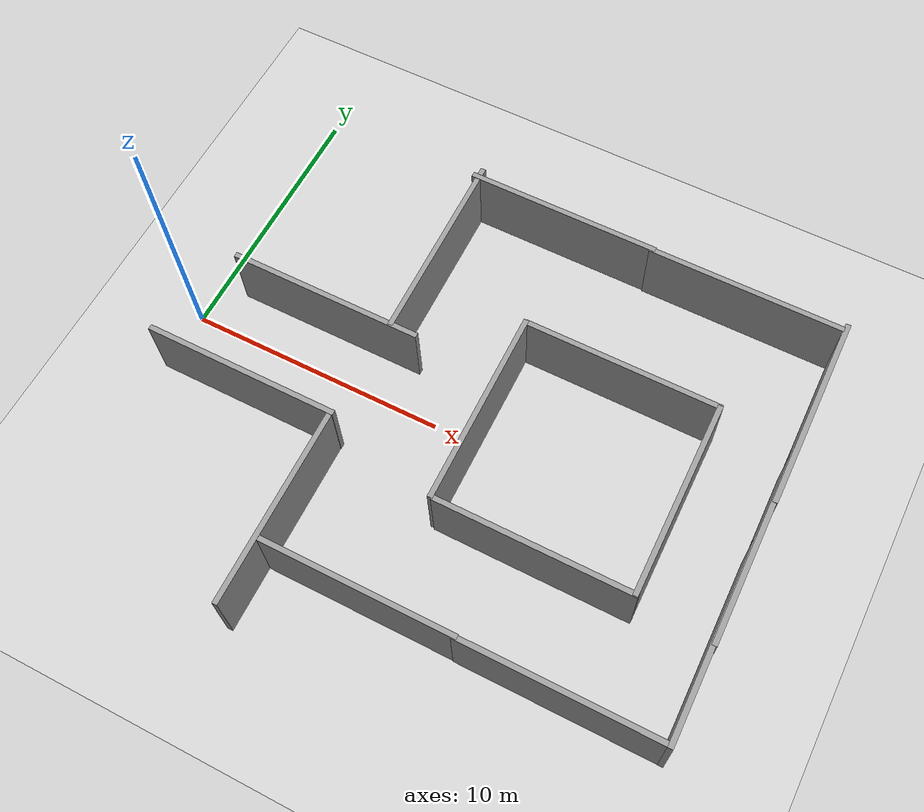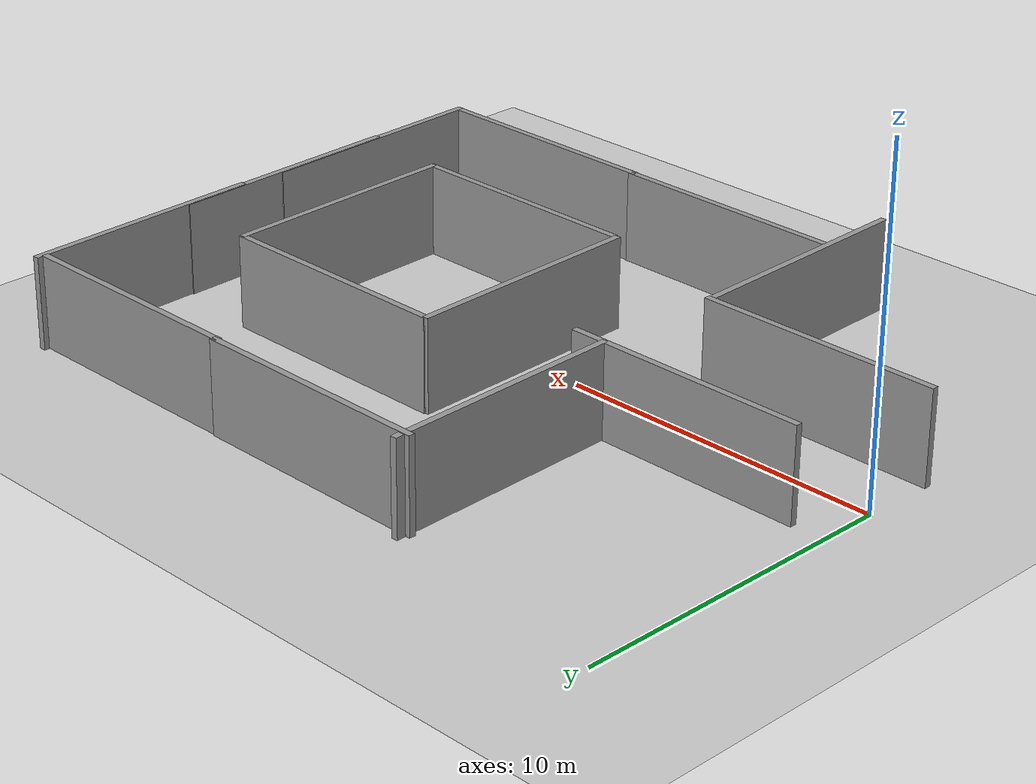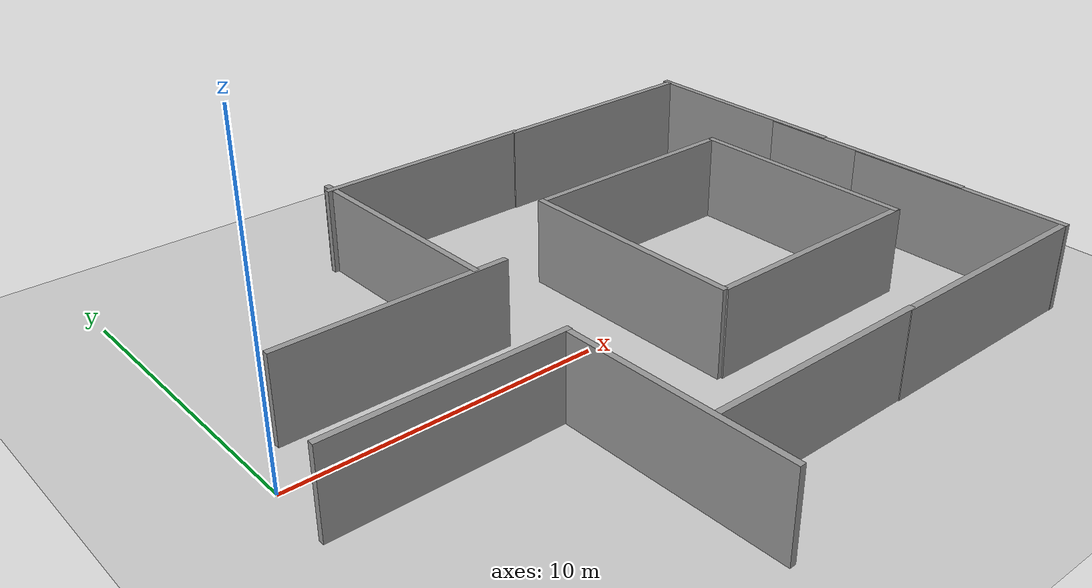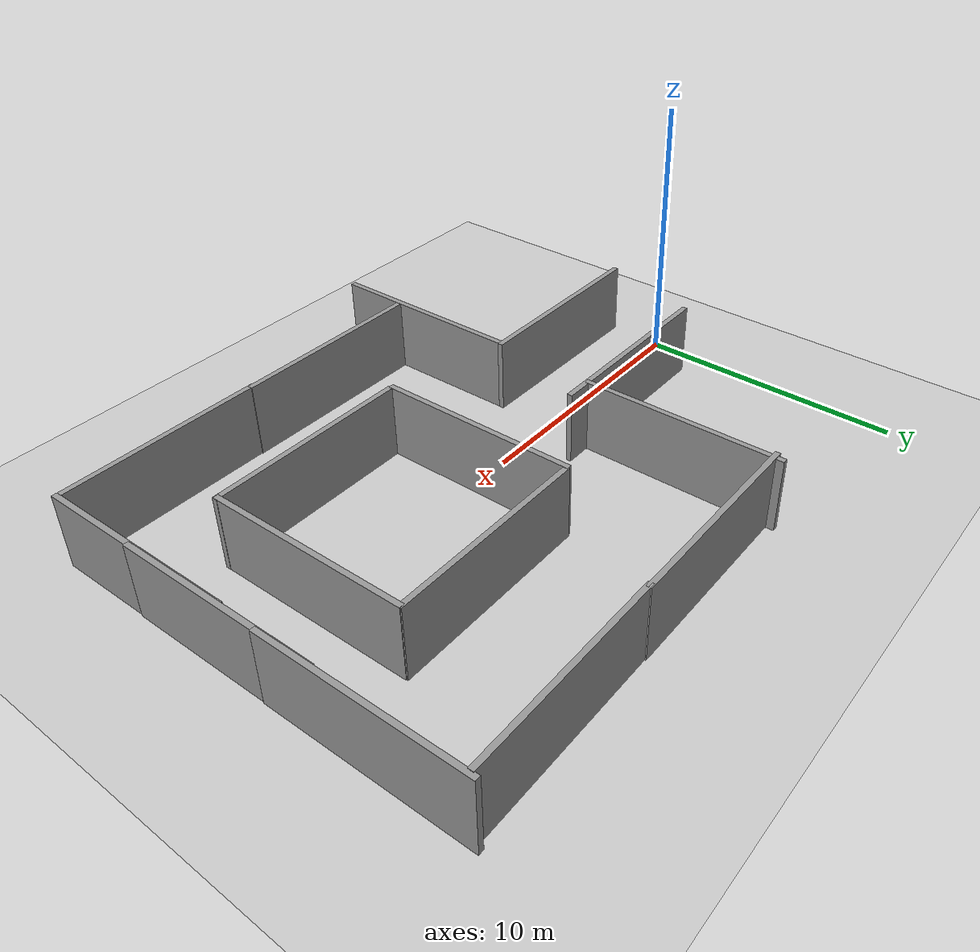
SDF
<sdf version="1.6">
 <world name="default">
  <light name="sun" type="directional">
   <pose>0 0 10 0 -0 0</pose>
   <diffuse>0.8 0.8 0.8 1</diffuse>
   <specular>0.2 0.2 0.2 1</specular>
   <attenuation>
    <range>1000</range>
    <constant>0.9</constant>
    <linear>0.01</linear>
    <quadratic>0.001</quadratic>
   </attenuation>
   <direction>-0.5 0.1 -0.9</direction>
  </light>
  <model name="ground_plane">
   <static>1</static>
   <link name="link">
    <collision name="collision">
     <geometry><plane><normal>0 0 1</normal><size>100 100</size></plane></geometry>
     <surface><friction><ode><mu>100</mu><mu2>50</mu2></ode></friction></surface>
    </collision>
    <visual name="visual">
     <cast_shadows>0</cast_shadows>
     <geometry><plane><normal>0 0 1</normal><size>100 100</size></plane></geometry>
     <material>
      <script><uri>file://media/materials/scripts/gazebo.material</uri><name>Gazebo/Grey</name></script>
     </material>
    </visual>
    <velocity_decay><linear>0</linear><angular>0</angular></velocity_decay>
   </link>
  </model>
  <physics name="default_physics" default="0" type="ode">
   <max_step_size>0.001</max_step_size>
   <real_time_factor>1</real_time_factor>
   <real_time_update_rate>1000</real_time_update_rate>
  </physics>
  <scene><ambient>0.4 0.4 0.4 1</ambient><background>0.7 0.7 0.7 1</background><shadows>1</shadows></scene>
  <model name="grey_wall">
   <static>1</static>
   <link name="link">
    <pose>0 0 1.4 0 -0 0</pose>
    <collision name="collision"><geometry><box><size>7.5 0.2 2.8</size></box></geometry></collision>
    <visual name="visual">
     <cast_shadows>0</cast_shadows>
     <geometry><box><size>7.5 0.2 2.8</size></box></geometry>
     <material>
      <script>
       <uri>model://grey_wall/materials/scripts</uri>
       <uri>model://grey_wall/materials/textures</uri>
       <name>vrc/grey_wall</name>
      </script>
     </material>
    </visual>
    <velocity_decay><linear>0</linear><angular>0</angular></velocity_decay>
   </link>
   <pose>10.7949 8.81333 0 0 -0 0</pose>
  </model>
  <gravity>0 0 -9.8</gravity>
  <magnetic_field>6e-06 2.3e-05 -4.2e-05</magnetic_field>
  <atmosphere type="adiabatic"/>
  <spherical_coordinates>
   <surface_model>EARTH_WGS84</surface_model>
   <latitude_deg>0</latitude_deg>
   <longitude_deg>0</longitude_deg>
   <elevation>0</elevation>
   <heading_deg>0</heading_deg>
  </spherical_coordinates>
  <model name="grey_wall_clone_0">
   <static>1</static>
   <link name="link">
    <pose>0 0 1.4 0 -0 0</pose>
    <collision name="collision"><geometry><box><size>7.5 0.2 2.8</size></box></geometry></collision>
    <visual name="visual">
     <cast_shadows>0</cast_shadows>
     <geometry><box><size>7.5 0.2 2.8</size></box></geometry>
     <material>
      <script>
       <uri>model://grey_wall/materials/scripts</uri>
       <uri>model://grey_wall/materials/textures</uri>
       <name>vrc/grey_wall</name>
      </script>
     </material>
    </visual>
    <velocity_decay><linear>0</linear><angular>0</angular></velocity_decay>
   </link>
   <pose>3.64552 -2.19317 0 0 -0 0</pose>
  </model>
  <model name="grey_wall_clone_clone_0">
   <static>1</static>
   <link name="link">
    <pose>0 0 1.4 0 -0 0</pose>
    <collision name="collision"><geometry><box><size>7.5 0.2 2.8</size></box></geometry></collision>
    <visual name="visual">
     <cast_shadows>0</cast_shadows>
     <geometry><box><size>7.5 0.2 2.8</size></box></geometry>
     <material>
      <script>
       <uri>model://grey_wall/materials/scripts</uri>
       <uri>model://grey_wall/materials/textures</uri>
       <name>vrc/grey_wall</name>
      </script>
     </material>
    </visual>
    <velocity_decay><linear>0</linear><angular>0</angular></velocity_decay>
   </link>
   <pose>7.34363 -5.99492 0.003813 -3.8e-05 -0.002072 -1.55267</pose>
  </model>
  <model name="grey_wall_clone_0_clone">
   <static>1</static>
   <link name="link">
    <pose>0 0 1.4 0 -0 0</pose>
    <collision name="collision"><geometry><box><size>7.5 0.2 2.8</size></box></geometry></collision>
    <visual name="visual">
     <cast_shadows>0</cast_shadows>
     <geometry><box><size>7.5 0.2 2.8</size></box></geometry>
     <material>
      <script>
       <uri>model://grey_wall/materials/scripts</uri>
       <uri>model://grey_wall/materials/textures</uri>
       <name>vrc/grey_wall</name>
      </script>
     </material>
    </visual>
    <velocity_decay><linear>0</linear><angular>0</angular></velocity_decay>
   </link>
   <pose>11.0486 -7.19499 0 0 -0 0</pose>
  </model>
  <model name="grey_wall_clone_clone_0_clone">
   <static>1</static>
   <link name="link">
    <pose>0 0 1.4 0 -0 0</pose>
    <collision name="collision"><geometry><box><size>7.5 0.2 2.8</size></box></geometry></collision>
    <visual name="visual">
     <cast_shadows>0</cast_shadows>
     <geometry><box><size>7.5 0.2 2.8</size></box></geometry>
     <material>
      <script>
       <uri>model://grey_wall/materials/scripts</uri>
       <uri>model://grey_wall/materials/textures</uri>
       <name>vrc/grey_wall</name>
      </script>
     </material>
    </visual>
    <velocity_decay><linear>0</linear><angular>0</angular></velocity_decay>
   </link>
   <pose>7.35625 5.44292 -0.006097 -3.8e-05 -0.002072 -1.55267</pose>
  </model>
  <model name="grey_wall_clone_2">
   <static>1</static>
   <link name="link">
    <pose>0 0 1.4 0 -0 0</pose>
    <collision name="collision"><geometry><box><size>7.5 0.2 2.8</size></box></geometry></collision>
    <visual name="visual">
     <cast_shadows>0</cast_shadows>
     <geometry><box><size>7.5 0.2 2.8</size></box></geometry>
     <material>
      <script>
       <uri>model://grey_wall/materials/scripts</uri>
       <uri>model://grey_wall/materials/textures</uri>
       <name>vrc/grey_wall</name>
      </script>
     </material>
    </visual>
    <velocity_decay><linear>0</linear><angular>0</angular></velocity_decay>
   </link>
   <pose>4.72865 1.74259 0 0 -0 0</pose>
  </model>
  <model name="grey_wall_clone_clone_2_clone">
   <static>1</static>
   <link name="link">
    <pose>0 0 1.4 0 -0 0</pose>
    <collision name="collision"><geometry><box><size>7.5 0.2 2.8</size></box></geometry></collision>
    <visual name="visual">
     <cast_shadows>0</cast_shadows>
     <geometry><box><size>7.5 0.2 2.8</size></box></geometry>
     <material>
      <script>
       <uri>model://grey_wall/materials/scripts</uri>
       <uri>model://grey_wall/materials/textures</uri>
       <name>vrc/grey_wall</name>
      </script>
     </material>
    </visual>
    <velocity_decay><linear>0</linear><angular>0</angular></velocity_decay>
   </link>
   <pose>11.716 0.307022 -0.000877 -3.8e-05 -0.002072 -1.55267</pose>
  </model>
  <model name="grey_wall_clone_3_clone">
   <static>1</static>
   <link name="link">
    <pose>0 0 1.4 0 -0 0</pose>
    <collision name="collision"><geometry><box><size>7.5 0.2 2.8</size></box></geometry></collision>
    <visual name="visual">
     <cast_shadows>0</cast_shadows>
     <geometry><box><size>7.5 0.2 2.8</size></box></geometry>
     <material>
      <script>
       <uri>model://grey_wall/materials/scripts</uri>
       <uri>model://grey_wall/materials/textures</uri>
       <name>vrc/grey_wall</name>
      </script>
     </material>
    </visual>
    <velocity_decay><linear>0</linear><angular>0</angular></velocity_decay>
   </link>
   <pose>15.4174 3.99012 -0.02076 0 -0 0</pose>
  </model>
  <model name="grey_wall_clone_3_clone_0">
   <static>1</static>
   <link name="link">
    <pose>0 0 1.4 0 -0 0</pose>
    <collision name="collision"><geometry><box><size>7.5 0.2 2.8</size></box></geometry></collision>
    <visual name="visual">
     <cast_shadows>0</cast_shadows>
     <geometry><box><size>7.5 0.2 2.8</size></box></geometry>
     <material>
      <script>
       <uri>model://grey_wall/materials/scripts</uri>
       <uri>model://grey_wall/materials/textures</uri>
       <name>vrc/grey_wall</name>
      </script>
     </material>
    </visual>
    <velocity_decay><linear>0</linear><angular>0</angular></velocity_decay>
   </link>
   <pose>15.5813 -3.38974 0 0 -0 0</pose>
  </model>
  <model name="grey_wall_clone">
   <static>1</static>
   <link name="link">
    <pose>0 0 1.4 0 -0 0</pose>
    <collision name="collision"><geometry><box><size>7.5 0.2 2.8</size></box></geometry></collision>
    <visual name="visual">
     <cast_shadows>0</cast_shadows>
     <geometry><box><size>7.5 0.2 2.8</size></box></geometry>
     <material>
      <script>
       <uri>model://grey_wall/materials/scripts</uri>
       <uri>model://grey_wall/materials/textures</uri>
       <name>vrc/grey_wall</name>
      </script>
     </material>
    </visual>
    <velocity_decay><linear>0</linear><angular>0</angular></velocity_decay>
   </link>
   <pose>18.0884 8.76966 0 0 -0 0</pose>
  </model>
  <model name="grey_wall_clone_1">
   <static>1</static>
   <link name="link">
    <pose>0 0 1.4 0 -0 0</pose>
    <collision name="collision"><geometry><box><size>7.5 0.2 2.8</size></box></geometry></collision>
    <visual name="visual">
     <cast_shadows>0</cast_shadows>
     <geometry><box><size>7.5 0.2 2.8</size></box></geometry>
     <material>
      <script>
       <uri>model://grey_wall/materials/scripts</uri>
       <uri>model://grey_wall/materials/textures</uri>
       <name>vrc/grey_wall</name>
      </script>
     </material>
    </visual>
    <velocity_decay><linear>0</linear><angular>0</angular></velocity_decay>
   </link>
   <pose>18.3532 -7.22372 0 0 -0 0</pose>
  </model>
  <model name="grey_wall_clone_clone_0_clone_clone">
   <static>1</static>
   <link name="link">
    <pose>0 0 1.4 0 -0 0</pose>
    <collision name="collision"><geometry><box><size>7.5 0.2 2.8</size></box></geometry></collision>
    <visual name="visual">
     <cast_shadows>0</cast_shadows>
     <geometry><box><size>7.5 0.2 2.8</size></box></geometry>
     <material>
      <script>
       <uri>model://grey_wall/materials/scripts</uri>
       <uri>model://grey_wall/materials/textures</uri>
       <name>vrc/grey_wall</name>
      </script>
     </material>
    </visual>
    <velocity_decay><linear>0</linear><angular>0</angular></velocity_decay>
   </link>
   <pose>19.1582 0.288688 -0.006097 -3.8e-05 -0.002072 -1.55267</pose>
  </model>
  <model name="grey_wall_clone_clone_0_clone_clone_0">
   <static>1</static>
   <link name="link">
    <pose>0 0 1.4 0 -0 0</pose>
    <collision name="collision"><geometry><box><size>7.5 0.2 2.8</size></box></geometry></collision>
    <visual name="visual">
     <cast_shadows>0</cast_shadows>
     <geometry><box><size>7.5 0.2 2.8</size></box></geometry>
     <material>
      <script>
       <uri>model://grey_wall/materials/scripts</uri>
       <uri>model://grey_wall/materials/textures</uri>
       <name>vrc/grey_wall</name>
      </script>
     </material>
    </visual>
    <velocity_decay><linear>0</linear><angular>0</angular></velocity_decay>
   </link>
   <pose>21.9653 5.28374 -0.006097 -3.8e-05 -0.002072 -1.55267</pose>
  </model>
  <model name="grey_wall_clone_clone_0_clone_clone_0_clone">
   <static>1</static>
   <link name="link">
    <pose>0 0 1.4 0 -0 0</pose>
    <collision name="collision"><geometry><box><size>7.5 0.2 2.8</size></box></geometry></collision>
    <visual name="visual">
     <cast_shadows>0</cast_shadows>
     <geometry><box><size>7.5 0.2 2.8</size></box></geometry>
     <material>
      <script>
       <uri>model://grey_wall/materials/scripts</uri>
       <uri>model://grey_wall/materials/textures</uri>
       <name>vrc/grey_wall</name>
      </script>
     </material>
    </visual>
    <velocity_decay><linear>0</linear><angular>0</angular></velocity_decay>
   </link>
   <pose>22.0301 -0.061103 -0.006097 -3.8e-05 -0.002072 -1.55267</pose>
  </model>
  <model name="grey_wall_clone_clone_0_clone_clone_0_clone_0">
   <static>1</static>
   <link name="link">
    <pose>0 0 1.4 0 -0 0</pose>
    <collision name="collision"><geometry><box><size>7.5 0.2 2.8</size></box></geometry></collision>
    <visual name="visual">
     <cast_shadows>0</cast_shadows>
     <geometry><box><size>7.5 0.2 2.8</size></box></geometry>
     <material>
      <script>
       <uri>model://grey_wall/materials/scripts</uri>
       <uri>model://grey_wall/materials/textures</uri>
       <name>vrc/grey_wall</name>
      </script>
     </material>
    </visual>
    <velocity_decay><linear>0</linear><angular>0</angular></velocity_decay>
   </link>
   <pose>22.0566 -3.58515 -0.006097 -3.8e-05 -0.002072 -1.55267</pose>
  </model>
 </world>
</sdf>
